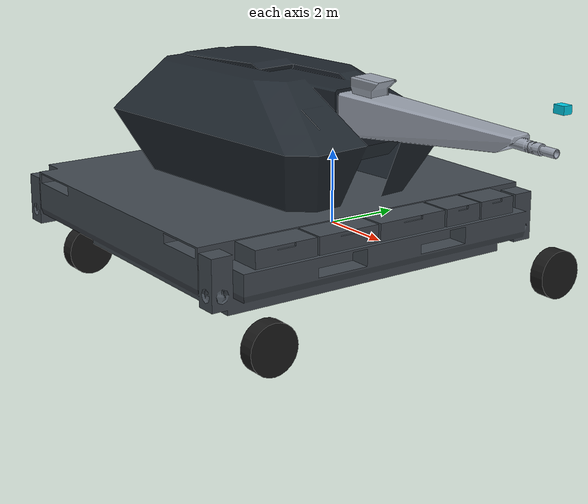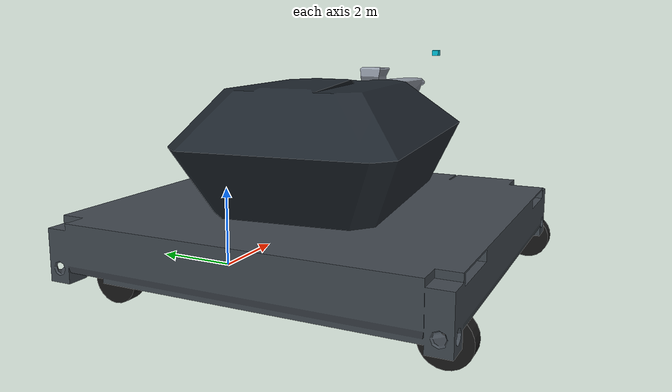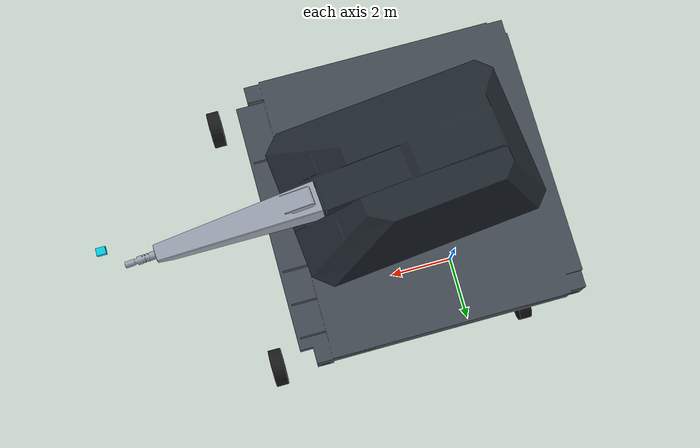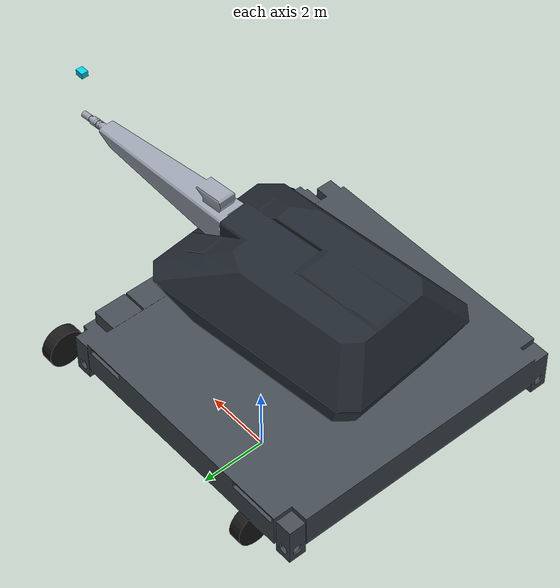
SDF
<?xml version="1.0" ?>
<sdf version="1.10">
  <model name="mantis_robot">

    <link name="base_link">
      <pose>0.000000 0.000000 0.000000 0 0 0</pose>
      <gravity>false</gravity>
      <inertial><mass>80</mass><inertia><ixx>45</ixx><iyy>45</iyy><izz>45</izz></inertia></inertial>
      <collision name="base_collision">
        <pose>0.9 -2.37 0.65 0 0 0</pose>
        <geometry><box><size>9.4 9.4 1.4</size></box></geometry>
      </collision>
      <visual name="base_visual">
        <geometry><mesh><uri>meshes/base_link.stl</uri></mesh></geometry>
        <material><ambient>0.18 0.20 0.22 1</ambient><diffuse>0.26 0.29 0.32 1</diffuse></material>
      </visual>
      <!-- Wheels centered around the pan_link mount (2.26, -2.23) so the
           camera arm sits over the geometric centre of the vehicle, not
           offset to the right. Wheelbase 8.2 m, track 8.3 m. -->
      <visual name="wheel_fl">
        <pose>6.36 1.92 -0.05 0 1.5708 0</pose>
        <geometry><cylinder><radius>0.6</radius><length>0.4</length></cylinder></geometry>
        <material><ambient>0.06 0.06 0.06 1</ambient><diffuse>0.10 0.10 0.10 1</diffuse></material>
      </visual>
      <visual name="wheel_fr">
        <pose>6.36 -6.38 -0.05 0 1.5708 0</pose>
        <geometry><cylinder><radius>0.6</radius><length>0.4</length></cylinder></geometry>
        <material><ambient>0.06 0.06 0.06 1</ambient><diffuse>0.10 0.10 0.10 1</diffuse></material>
      </visual>
      <visual name="wheel_rl">
        <pose>-1.84 1.92 -0.05 0 1.5708 0</pose>
        <geometry><cylinder><radius>0.6</radius><length>0.4</length></cylinder></geometry>
        <material><ambient>0.06 0.06 0.06 1</ambient><diffuse>0.10 0.10 0.10 1</diffuse></material>
      </visual>
      <visual name="wheel_rr">
        <pose>-1.84 -6.38 -0.05 0 1.5708 0</pose>
        <geometry><cylinder><radius>0.6</radius><length>0.4</length></cylinder></geometry>
        <material><ambient>0.06 0.06 0.06 1</ambient><diffuse>0.10 0.10 0.10 1</diffuse></material>
      </visual>
    </link>

    <link name="pan_link">
      <pose>2.259159 -2.233988 2.039962 0 0 0</pose>
      <inertial><mass>40</mass><inertia><ixx>60</ixx><iyy>60</iyy><izz>60</izz></inertia></inertial>
      <collision name="pan_collision">
        <pose>0 0 1.1 0 0 0</pose>
        <geometry><box><size>8.2 6.2 2.8</size></box></geometry>
      </collision>
      <visual name="pan_visual">
        <geometry><mesh><uri>meshes/pan_link.stl</uri></mesh></geometry>
        <material><ambient>0.08 0.10 0.12 1</ambient><diffuse>0.12 0.15 0.18 1</diffuse></material>
      </visual>
    </link>

    <joint name="pan_joint" type="revolute">
      <parent>base_link</parent>
      <child>pan_link</child>
      <pose relative_to="base_link">2.259159 -2.233988 2.039962 0 0 0</pose>
      <axis>
        <xyz expressed_in="base_link">0 0 1</xyz>
        <limit><lower>-1.48876584</lower><upper>1.55683362</upper><effort>3000</effort><velocity>2.5</velocity></limit>
        <dynamics><damping>120.0</damping><friction>8.0</friction></dynamics>
      </axis>
    </joint>

    <link name="tilt_link">
      <pose>3.998708 -2.146332 3.529934 0 0 0</pose>
      <inertial>
        <!-- CoM on the rotation axis so gravity creates no static torque
             on tilt_joint. Otherwise the inner JointPositionController
             needed >350 N·m just to hold position. -->
        <pose>0 0 0 0 0 0</pose>
        <mass>12</mass>
        <inertia><ixx>15</ixx><iyy>30</iyy><izz>30</izz></inertia>
      </inertial>
      <collision name="tilt_collision">
        <pose>3.0 0 0.6 0 0 0</pose>
        <geometry><box><size>6.4 1.8 1.8</size></box></geometry>
      </collision>
      <visual name="tilt_visual">
        <geometry><mesh><uri>meshes/tilt_link.stl</uri></mesh></geometry>
        <material><ambient>0.45 0.48 0.52 1</ambient><diffuse>0.60 0.63 0.68 1</diffuse></material>
      </visual>
      <visual name="nose_camera_marker">
        <pose>6.250000 0.000000 1.650000 0 0 0</pose>
        <geometry><box><size>0.28 0.22 0.18</size></box></geometry>
        <material><ambient>0.0 0.55 0.65 1</ambient><diffuse>0.0 0.8 0.9 1</diffuse></material>
      </visual>
      <sensor name="nose_camera" type="camera">
        <pose>6.250000 0.000000 1.650000 0 0 0</pose>
        <topic>/mantis/nose_camera/image</topic>
        <update_rate>30</update_rate>
        <camera>
          <horizontal_fov>1.012</horizontal_fov>
          <image><width>1280</width><height>720</height><format>R8G8B8</format></image>
          <clip><near>0.1</near><far>160</far></clip>
        </camera>
      </sensor>
    </link>

    <joint name="tilt_joint" type="revolute">
      <parent>pan_link</parent>
      <child>tilt_link</child>
      <pose relative_to="pan_link">1.739549 0.087656 1.489971 0 0 0</pose>
      <axis>
        <xyz expressed_in="pan_link">0 1 0</xyz>
        <limit><lower>-0.69813168</lower><upper>0.52359879</upper><effort>2500</effort><velocity>2.0</velocity></limit>
        <dynamics><damping>90.0</damping><friction>6.0</friction></dynamics>
      </axis>
    </joint>

    <plugin filename="gz-sim-joint-position-controller-system" name="gz::sim::systems::JointPositionController">
      <joint_name>pan_joint</joint_name>
      <topic>/mantis/pan_cmd</topic>
      <p_gain>2000.0</p_gain>
      <i_gain>60.0</i_gain>
      <d_gain>900.0</d_gain>
      <i_max>500.0</i_max>
      <i_min>-500.0</i_min>
      <cmd_max>3000.0</cmd_max>
      <cmd_min>-3000.0</cmd_min>
      <initial_position>0.0</initial_position>
    </plugin>
    <plugin filename="gz-sim-joint-position-controller-system" name="gz::sim::systems::JointPositionController">
      <joint_name>tilt_joint</joint_name>
      <topic>/mantis/tilt_cmd</topic>
      <p_gain>1750.0</p_gain>
      <i_gain>50.0</i_gain>
      <d_gain>900.0</d_gain>
      <i_max>400.0</i_max>
      <i_min>-400.0</i_min>
      <cmd_max>2500.0</cmd_max>
      <cmd_min>-2500.0</cmd_min>
      <initial_position>0.20943951</initial_position>
    </plugin>
    <plugin filename="gz-sim-joint-state-publisher-system" name="gz::sim::systems::JointStatePublisher">
      <topic>/mantis/joint_states</topic>
      <joint_name>pan_joint</joint_name>
      <joint_name>tilt_joint</joint_name>
    </plugin>
  </model>
</sdf>
